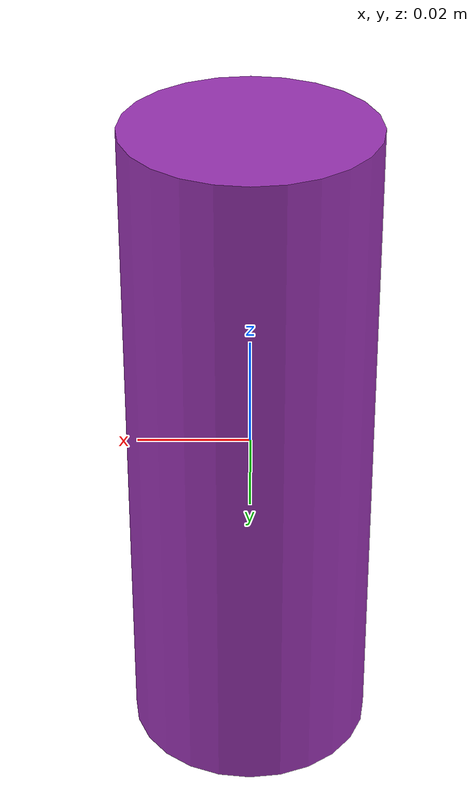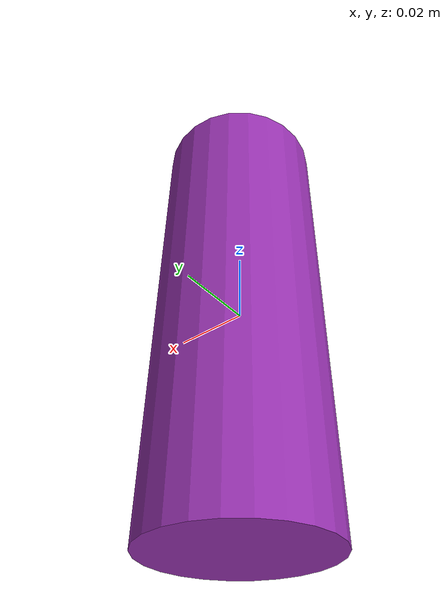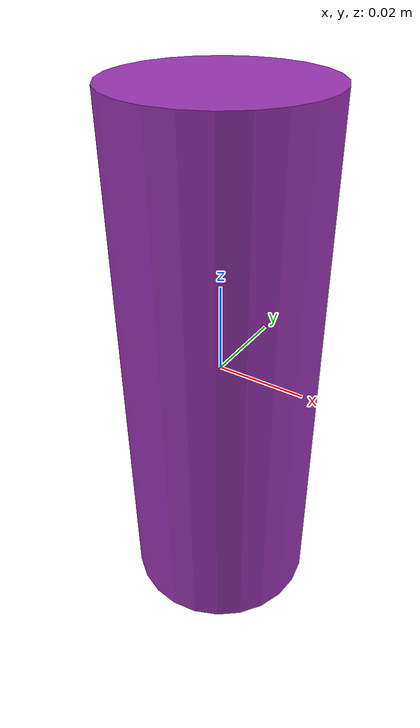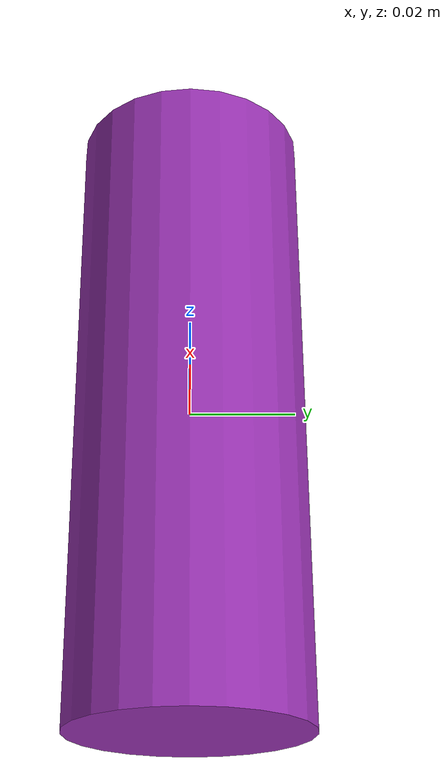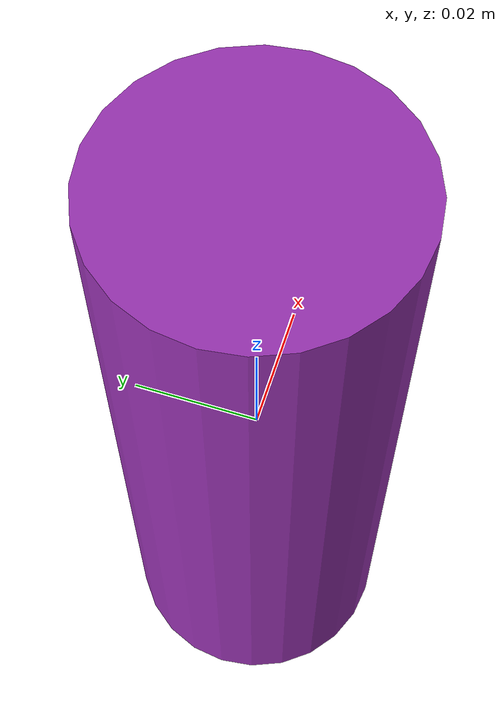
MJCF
<mujoco model="purplecan">
  <asset>
    <texture file="textures/tallcan/purplepringle.png" name="tex-purplecan"/>
    <material name="purplecan" reflectance="0.7" texrepeat="5 5" texture="tex-purplecan" texuniform="true"/>
  </asset>
  <worldbody>
    <body>
      <body name="collision">
        <geom pos="0 0 0" size="0.022 0.06" type="cylinder" solimp="0.998 0.998 0.001" solref="0.001 1" density="100" friction="0.95 0.3 0.1" material="purplecan" group="1" condim="4"/>
      </body>

      <site rgba="1 0 0 0" size="0.005" pos="0 0 -0.08" name="bottom_site"/>
      <site rgba="0 1 0 0" size="0.005" pos="0 0 0.0" name="top_site"/>
      <site rgba="0 0 1 0" size="0.005" pos="0.06 0.06 0" name="horizontal_radius_site"/>
    </body>
  </worldbody>
</mujoco>
